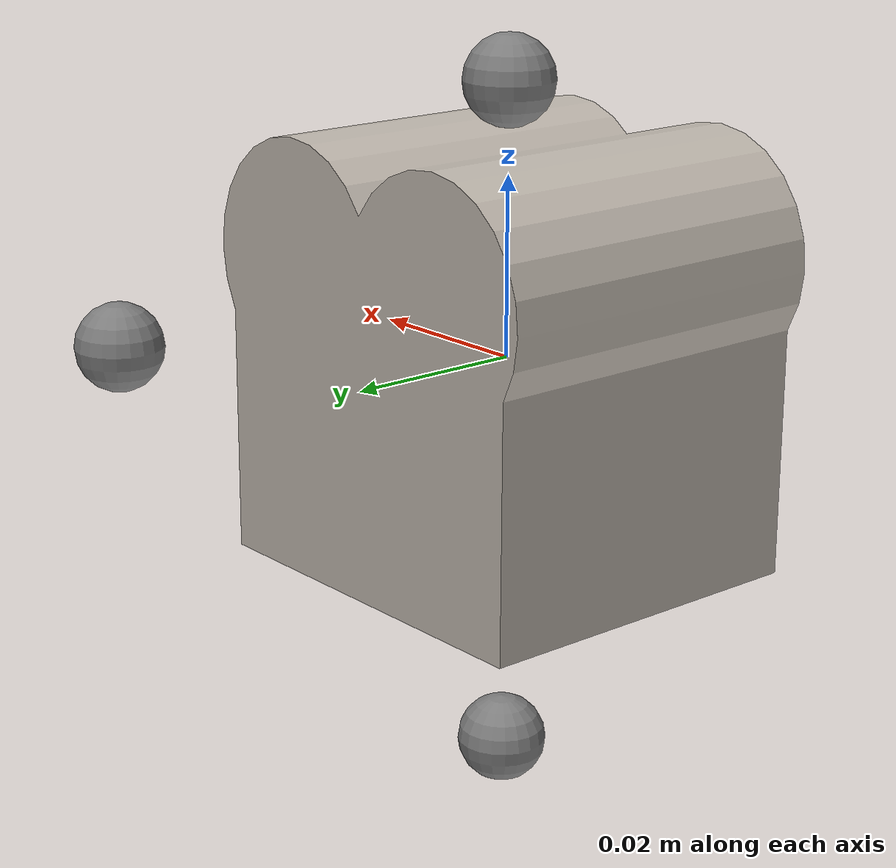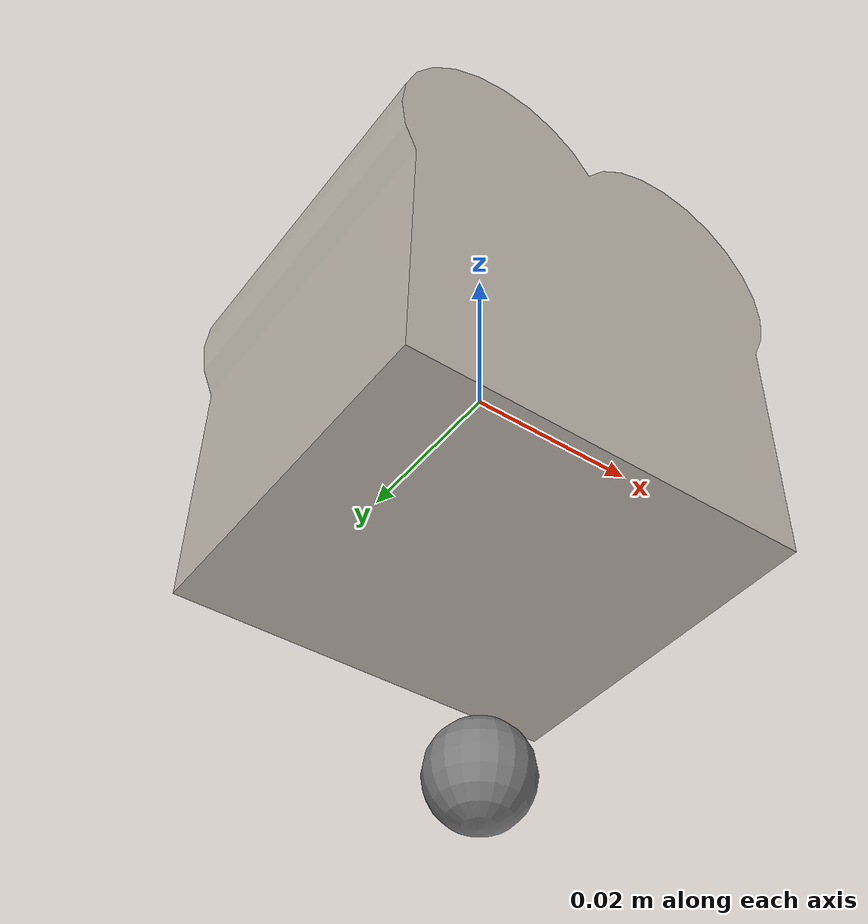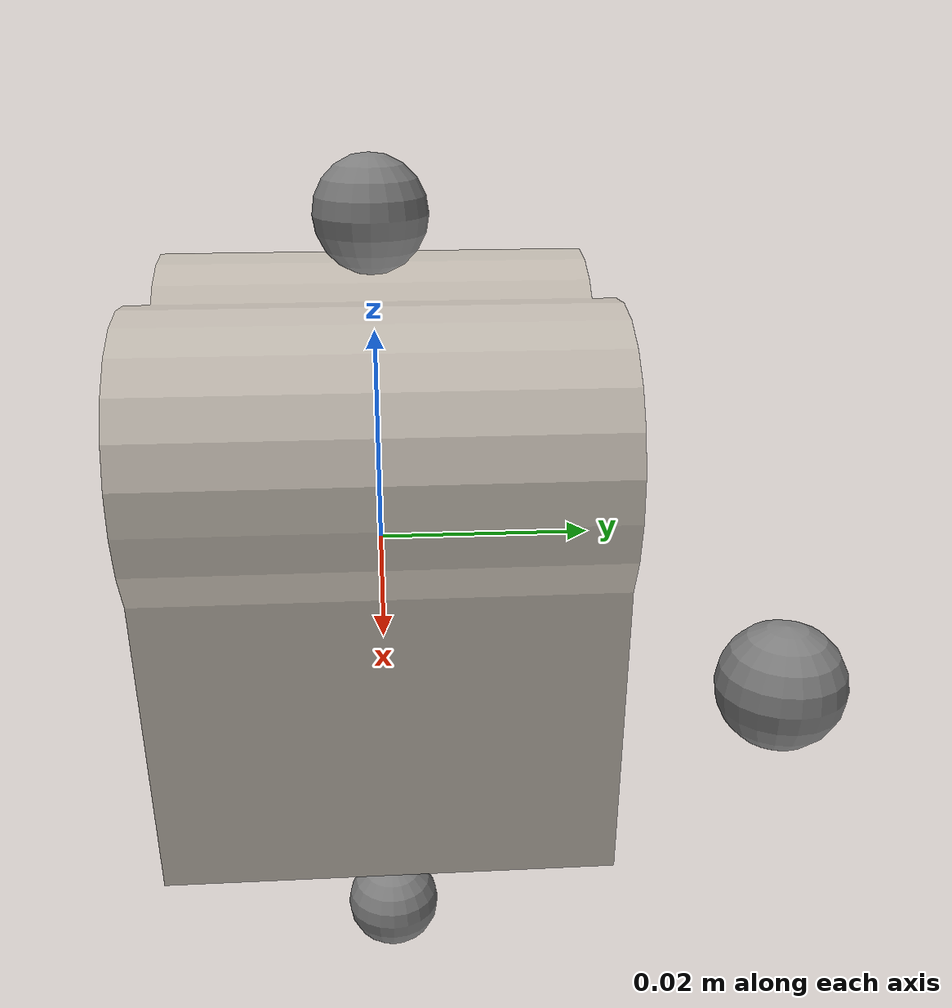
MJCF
<mujoco model="bread">
  <asset>
    <mesh file="meshes/bread.stl" name="bread_mesh" scale="0.8 0.8 0.8"/>
    <texture file="../textures/bread.png" type="2d" name="tex-bread" />
    <material name="bread" reflectance="0.7" texrepeat="15 15" texture="tex-bread" texuniform="true"/>
  </asset>
  <worldbody>
    <body>
      <body name="collision">
        <geom pos="0 0 0" mesh="bread_mesh" type="mesh" solimp="0.998 0.998 0.001" solref="0.001 1" density="50" friction="0.95 0.3 0.1"  material="bread" group="1" condim="4"/>
      </body>
      <body name="visual">
        <geom pos="0 0 0" mesh="bread_mesh" type="mesh" material="bread"  conaffinity="0" contype="0"  group="0" mass="0.0001"/>
        <geom pos="0 0 0" mesh="bread_mesh" type="mesh" material="bread"  conaffinity="0" contype="0"  group="1" mass="0.0001"/>
      </body>
      <site pos="0 0 -0.045" name="bottom_site"/>
      <site pos="0 0 0.03" name="top_site"/>
      <site pos="0.03 0.03 0" name="horizontal_radius_site"/>
    </body>
  </worldbody>
</mujoco>
